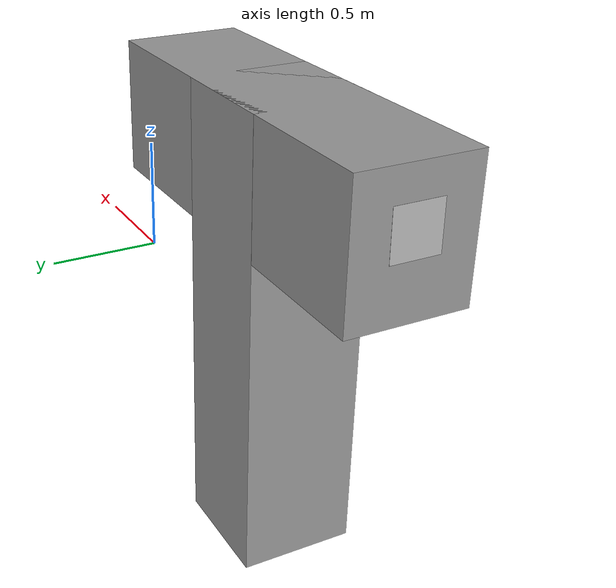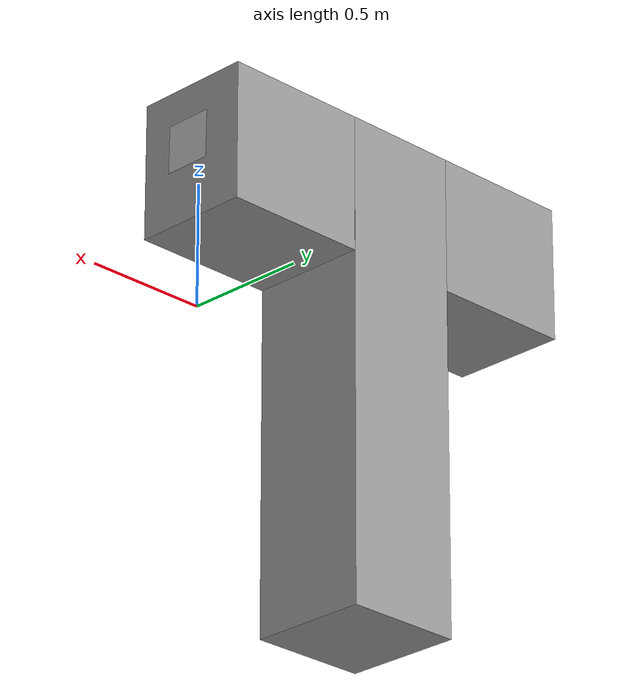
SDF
<?xml version='1.0'?>
<sdf version='1.7'>
  <model name='fira_build'>
    <link name='link_0'>
      <inertial>
        <mass>0.583841</mass>
        <inertia>
          <ixx>0.0973069</ixx>
          <ixy>0</ixy>
          <ixz>0</ixz>
          <iyy>0.0652376</iyy>
          <iyz>0</iyz>
          <izz>0.0652376</izz>
        </inertia>
        <pose>0 0 2 0 -0 0</pose>
      </inertial>
      <pose>-0.942835 -0.127491 -0 0 -0 0</pose>
      <self_collide>0</self_collide>
      <kinematic>0</kinematic>
      <enable_wind>0</enable_wind>
      <gravity>1</gravity>
      <visual name='visual'>
        <pose>0 0 0 0 -0 0</pose>
        <geometry>
          <box>
            <size>0.5 0.5 2</size>
          </box>
        </geometry>
        <material>
          <lighting>1</lighting>
          <script>
            <uri>file://media/materials/scripts/gazebo.material</uri>
            <name>Gazebo/Grey</name>
          </script>
          <shader type='pixel'>
            <normal_map>__default__</normal_map>
          </shader>
          <ambient>0.3 0.3 0.3 1</ambient>
          <diffuse>0.7 0.7 0.7 1</diffuse>
          <specular>0.01 0.01 0.01 1</specular>
          <emissive>0 0 0 1</emissive>
        </material>
        <transparency>0</transparency>
        <cast_shadows>1</cast_shadows>
      </visual>
      <collision name='collision'>
        <laser_retro>0</laser_retro>
        <max_contacts>10</max_contacts>
        <pose>0 0 0 0 -0 0</pose>
        <geometry>
          <box>
            <size>0.583834 1 1</size>
          </box>
        </geometry>
        <surface>
          <friction>
            <ode>
              <mu>1</mu>
              <mu2>1</mu2>
              <fdir1>0 0 0</fdir1>
              <slip1>0</slip1>
              <slip2>0</slip2>
            </ode>
            <torsional>
              <coefficient>1</coefficient>
              <patch_radius>0</patch_radius>
              <surface_radius>0</surface_radius>
              <use_patch_radius>1</use_patch_radius>
              <ode>
                <slip>0</slip>
              </ode>
            </torsional>
          </friction>
          <bounce>
            <restitution_coefficient>0</restitution_coefficient>
            <threshold>1e+06</threshold>
          </bounce>
          <contact>
            <collide_without_contact>0</collide_without_contact>
            <collide_without_contact_bitmask>1</collide_without_contact_bitmask>
            <collide_bitmask>1</collide_bitmask>
            <ode>
              <soft_cfm>0</soft_cfm>
              <soft_erp>0.2</soft_erp>
              <kp>1e+13</kp>
              <kd>1</kd>
              <max_vel>0.01</max_vel>
              <min_depth>0</min_depth>
            </ode>
            <bullet>
              <split_impulse>1</split_impulse>
              <split_impulse_penetration_threshold>-0.01</split_impulse_penetration_threshold>
              <soft_cfm>0</soft_cfm>
              <soft_erp>0.2</soft_erp>
              <kp>1e+13</kp>
              <kd>1</kd>
            </bullet>
          </contact>
        </surface>
      </collision>
    </link>
    <link name='link_1_clone'>
      <inertial>
        <mass>1.18726</mass>
        <inertia>
          <ixx>0.211136</ixx>
          <ixy>0</ixy>
          <ixz>0</ixz>
          <iyy>0.482851</iyy>
          <iyz>0</iyz>
          <izz>0.321095</izz>
        </inertia>
        <pose>0 0 0 0 -0 0</pose>
      </inertial>
      <pose>-0.576279 -0.127491 0.716297 0 -0 0</pose>
      <self_collide>0</self_collide>
      <kinematic>0</kinematic>
      <enable_wind>0</enable_wind>
      <visual name='visual'>
        <pose>-0.366556 0 0 0 -0 0</pose>
        <geometry>
          <box>
            <size>1.73086 0.499 0.567406</size>
          </box>
        </geometry>
        <material>
          <lighting>1</lighting>
          <script>
            <uri>file://media/materials/scripts/gazebo.material</uri>
            <name>Gazebo/Grey</name>
          </script>
          <shader type='pixel'>
            <normal_map>__default__</normal_map>
          </shader>
          <ambient>0.3 0.3 0.3 1</ambient>
          <diffuse>0.7 0.7 0.7 1</diffuse>
          <specular>0.01 0.01 0.01 1</specular>
          <emissive>0 0 0 1</emissive>
        </material>
        <transparency>0</transparency>
        <cast_shadows>1</cast_shadows>
      </visual>
      <collision name='collision'>
        <laser_retro>0</laser_retro>
        <max_contacts>10</max_contacts>
        <pose>0 0 0 0 -0 0</pose>
        <geometry>
          <box>
            <size>1.73086 0.499551 1.37276</size>
          </box>
        </geometry>
        <surface>
          <friction>
            <ode>
              <mu>1</mu>
              <mu2>1</mu2>
              <fdir1>0 0 0</fdir1>
              <slip1>0</slip1>
              <slip2>0</slip2>
            </ode>
            <torsional>
              <coefficient>1</coefficient>
              <patch_radius>0</patch_radius>
              <surface_radius>0</surface_radius>
              <use_patch_radius>1</use_patch_radius>
              <ode>
                <slip>0</slip>
              </ode>
            </torsional>
          </friction>
          <bounce>
            <restitution_coefficient>0</restitution_coefficient>
            <threshold>1e+06</threshold>
          </bounce>
          <contact>
            <collide_without_contact>0</collide_without_contact>
            <collide_without_contact_bitmask>1</collide_without_contact_bitmask>
            <collide_bitmask>1</collide_bitmask>
            <ode>
              <soft_cfm>0</soft_cfm>
              <soft_erp>0.2</soft_erp>
              <kp>1e+13</kp>
              <kd>1</kd>
              <max_vel>0.01</max_vel>
              <min_depth>0</min_depth>
            </ode>
            <bullet>
              <split_impulse>1</split_impulse>
              <split_impulse_penetration_threshold>-0.01</split_impulse_penetration_threshold>
              <soft_cfm>0</soft_cfm>
              <soft_erp>0.2</soft_erp>
              <kp>1e+13</kp>
              <kd>1</kd>
            </bullet>
          </contact>
        </surface>
      </collision>
    </link>
    <model name='qr_Victim_1'>
      <static>1</static>
      <link name='qr_Victim_1_link'>
        <pose>0 0 0.001 0 -0 1.5708</pose>
        <visual name='visual_qr_Victim_1'>
          <cast_shadows>0</cast_shadows>
          <geometry>
            <box>
              <size>0.2 0.2 0.001</size>
            </box>
          </geometry>
          <material>
            <script>
              <uri>model://qr_Victim_1/materials/scripts</uri>
              <uri>model://qr_Victim_1/materials/textures</uri>
              <name>qr_Victim_1/qr_Victim_1</name>
            </script>
          </material>
        </visual>
        <self_collide>0</self_collide>
        <enable_wind>0</enable_wind>
        <kinematic>0</kinematic>
      </link>
      <pose>-1.81646 -0.125579 0.769645 0 -1.55321 0</pose>
    </model>
    <model name='qr_Victim_2'>
      <static>1</static>
      <link name='qr_Victim_2_link'>
        <pose>0 0 0.001 0 -0 1.5708</pose>
        <visual name='visual_qr_Victim_2'>
          <cast_shadows>0</cast_shadows>
          <geometry>
            <box>
              <size>0.2 0.2 0.001</size>
            </box>
          </geometry>
          <material>
            <script>
              <uri>model://qr_Victim_2/materials/scripts</uri>
              <uri>model://qr_Victim_2/materials/textures</uri>
              <name>qr_Victim_2/qr_Victim_2</name>
            </script>
          </material>
        </visual>
        <self_collide>0</self_collide>
        <enable_wind>0</enable_wind>
        <kinematic>0</kinematic>
      </link>
      <pose>-0.063176 -0.131087 0.750636 0 1.55267 0</pose>
    </model>
    <model name='qr_Victim_3'>
      <static>1</static>
      <link name='qr_Victim_3_link'>
        <pose>0 0 0.001 0 -0 1.5708</pose>
        <visual name='visual_qr_Victim_3'>
          <cast_shadows>0</cast_shadows>
          <geometry>
            <box>
              <size>0.2 0.2 0.001</size>
            </box>
          </geometry>
          <material>
            <script>
              <uri>model://qr_Victim_3/materials/scripts</uri>
              <uri>model://qr_Victim_3/materials/textures</uri>
              <name>qr_Victim_3/qr_Victim_3</name>
            </script>
          </material>
        </visual>
        <self_collide>0</self_collide>
        <enable_wind>0</enable_wind>
        <kinematic>0</kinematic>
      </link>
      <pose>-1.53922 -0.39629 0.800158 1.54332 -0 0</pose>
    </model>
    <joint name='link_0_JOINT_0' type='fixed'>
      <parent>link_0</parent>
      <child>link_1_clone</child>
      <pose>0 0 0 0 -0 0</pose>
      <physics>
        <ode>
          <limit>
            <cfm>0</cfm>
            <erp>0.2</erp>
          </limit>
          <suspension>
            <cfm>0</cfm>
            <erp>0.2</erp>
          </suspension>
        </ode>
      </physics>
    </joint>
    <joint name='link_0_JOINT_5' type='fixed'>
      <parent>link_0</parent>
      <child>link_1_clone</child>
      <pose>0 0 0 0 -0 0</pose>
      <physics>
        <ode>
          <limit>
            <cfm>0</cfm>
            <erp>0.2</erp>
          </limit>
          <suspension>
            <cfm>0</cfm>
            <erp>0.2</erp>
          </suspension>
        </ode>
      </physics>
    </joint>
    <joint name='link_1_clone_JOINT_0' type='revolute'>
      <parent>link_1_clone</parent>
      <child>link_0</child>
      <pose>0 0 0 0 -0 0</pose>
      <axis>
        <xyz>1 0 0</xyz>
        <limit>
          <lower>-1.79769e+308</lower>
          <upper>1.79769e+308</upper>
          <effort>-1</effort>
          <velocity>-1</velocity>
        </limit>
        <dynamics>
          <spring_reference>0</spring_reference>
          <spring_stiffness>0</spring_stiffness>
          <damping>0</damping>
        </dynamics>
      </axis>
      <physics>
        <ode>
          <limit>
            <cfm>0</cfm>
            <erp>0.2</erp>
          </limit>
          <suspension>
            <cfm>0</cfm>
            <erp>0.2</erp>
          </suspension>
        </ode>
      </physics>
    </joint>
    <joint name='link_1_clone_JOINT_1' type='prismatic'>
      <parent>link_1_clone</parent>
      <child>link_0</child>
      <pose>0 0 0 0 -0 0</pose>
      <axis>
        <xyz>0 0 1</xyz>
        <limit>
          <lower>-1.79769e+308</lower>
          <upper>1.79769e+308</upper>
          <effort>-1</effort>
          <velocity>-1</velocity>
        </limit>
        <dynamics>
          <spring_reference>0</spring_reference>
          <spring_stiffness>0</spring_stiffness>
          <damping>0</damping>
        </dynamics>
      </axis>
      <physics>
        <ode>
          <limit>
            <cfm>0</cfm>
            <erp>0.2</erp>
          </limit>
          <suspension>
            <cfm>0</cfm>
            <erp>0.2</erp>
          </suspension>
        </ode>
      </physics>
    </joint>
    <joint name='link_1_clone_JOINT_2' type='fixed'>
      <parent>link_1_clone</parent>
      <child>link_0</child>
      <pose>0 0 0 0 -0 0</pose>
      <physics>
        <ode>
          <limit>
            <cfm>0</cfm>
            <erp>0.2</erp>
          </limit>
          <suspension>
            <cfm>0</cfm>
            <erp>0.2</erp>
          </suspension>
        </ode>
      </physics>
    </joint>
    <static>1</static>
    <allow_auto_disable>1</allow_auto_disable>
  </model>
</sdf>
